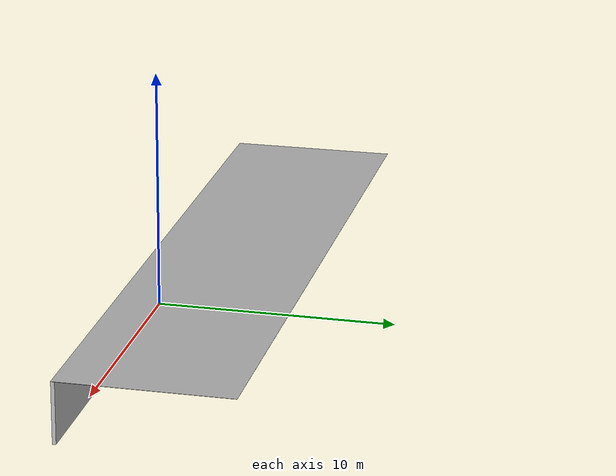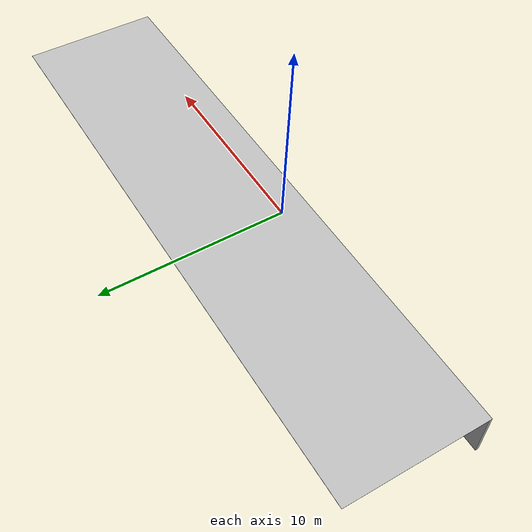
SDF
<?xml version="1.0" ?>
<sdf version="1.5">
  <model name="tunnel_29m">
    <static>true</static>
    <link name="link">
      <collision name="wall_01">
        <pose>-0.0 0 2.14 0 0 0</pose>
        <geometry>
          <box>
            <size>12.15 0.31 4.28</size>
          </box>
        </geometry>
      </collision>
      <visual name="visual">
        <geometry>
          <mesh>
            <uri>model://tunnel_29m/meshes/wall_29m.dae</uri>
          </mesh>
        </geometry>
      </visual>

       <visual name='visual_roof_0'>
        <pose>0 3.425 2.505 0 0 0</pose>

        <geometry>
          <box>
            <size>29 7 0.01</size>
          </box>
        </geometry>
        <material>
          <script>
            <uri>model://tunnel_29m/materials/scripts</uri>
            <uri>model://tunnel_29m/materials/textures</uri>
            <name>tunnel_29m/Roof</name>
          </script>
        </material>
      </visual>
    </link>
  </model>
</sdf>
